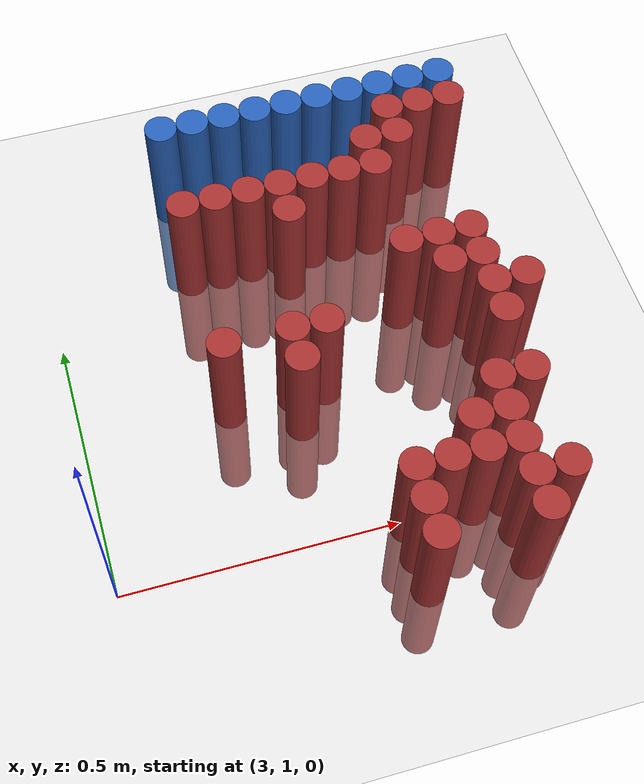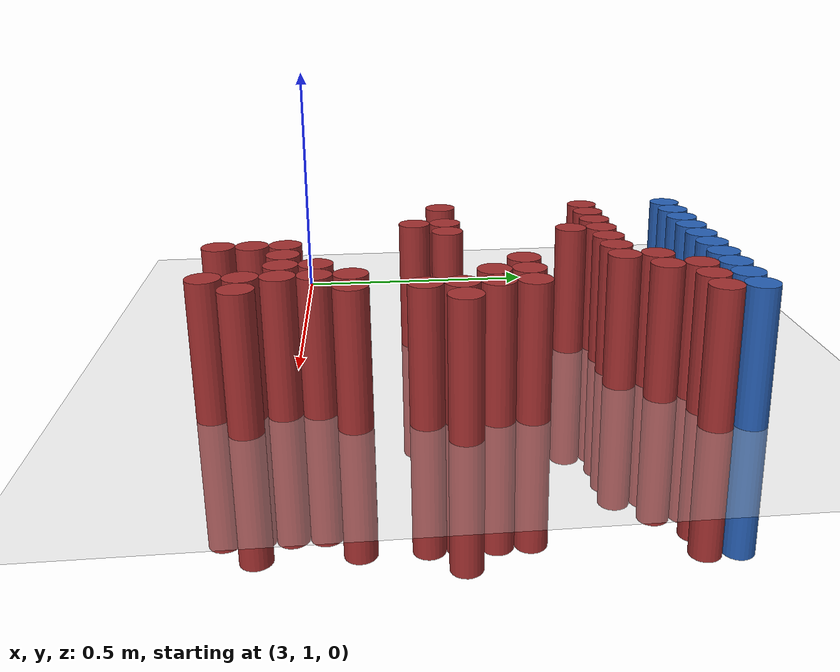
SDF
<sdf version="1.6">
 <world name="default">
  <model name="ground_plane">
   <static>1</static>
   <link name="link">
    <collision name="collision">
     <geometry><plane><normal>0 0 1</normal><size>100 100</size></plane></geometry>
     <surface><friction><ode><mu>100</mu><mu2>50</mu2></ode></friction></surface>
    </collision>
    <visual name="visual">
     <cast_shadows>0</cast_shadows>
     <geometry><plane><normal>0 0 1</normal><size>100 100</size></plane></geometry>
     <material>
      <script><uri>file://media/materials/scripts/gazebo.material</uri><name>Gazebo/Grey</name></script>
     </material>
    </visual>
   </link>
  </model>
  <model name="unit_cylinder_115">
   <static>1</static>
   <pose>3.270000 1.770000 0.000000 0.000000 0.000000 0.000000</pose>
   <link name="link">
    <inertial>
     <mass>1</mass>
     <inertia><ixx>0.145833</ixx><ixy>0</ixy><ixz>0</ixz><iyy>0.145833</iyy><iyz>0</iyz><izz>0.125</izz></inertia>
    </inertial>
    <collision name="collision">
     <geometry><cylinder><radius>0.030000</radius><length>0.5</length></cylinder></geometry>
    </collision>
    <visual name="visual">
     <geometry><cylinder><radius>0.030000</radius><length>0.5</length></cylinder></geometry>
     <material>
      <ambient>0.152000 0.379000 0.720000 1</ambient>
      <diffuse>0.152000 0.379000 0.720000 1</diffuse>
     </material>
     <material>
      <script><name>Gazebo/Grey</name><uri>file://media/materials/scripts/gazebo.material</uri></script>
     </material>
    </visual>
   </link>
  </model>
  <model name="unit_cylinder_116">
   <static>1</static>
   <pose>3.330000 1.770000 0.000000 0.000000 0.000000 0.000000</pose>
   <link name="link">
    <inertial>
     <mass>1</mass>
     <inertia><ixx>0.145833</ixx><ixy>0</ixy><ixz>0</ixz><iyy>0.145833</iyy><iyz>0</iyz><izz>0.125</izz></inertia>
    </inertial>
    <collision name="collision">
     <geometry><cylinder><radius>0.030000</radius><length>0.5</length></cylinder></geometry>
    </collision>
    <visual name="visual">
     <geometry><cylinder><radius>0.030000</radius><length>0.5</length></cylinder></geometry>
     <material>
      <ambient>0.152000 0.379000 0.720000 1</ambient>
      <diffuse>0.152000 0.379000 0.720000 1</diffuse>
     </material>
     <material>
      <script><name>Gazebo/Grey</name><uri>file://media/materials/scripts/gazebo.material</uri></script>
     </material>
    </visual>
   </link>
  </model>
  <model name="unit_cylinder_117">
   <static>1</static>
   <pose>3.390000 1.770000 0.000000 0.000000 0.000000 0.000000</pose>
   <link name="link">
    <inertial>
     <mass>1</mass>
     <inertia><ixx>0.145833</ixx><ixy>0</ixy><ixz>0</ixz><iyy>0.145833</iyy><iyz>0</iyz><izz>0.125</izz></inertia>
    </inertial>
    <collision name="collision">
     <geometry><cylinder><radius>0.030000</radius><length>0.5</length></cylinder></geometry>
    </collision>
    <visual name="visual">
     <geometry><cylinder><radius>0.030000</radius><length>0.5</length></cylinder></geometry>
     <material>
      <ambient>0.152000 0.379000 0.720000 1</ambient>
      <diffuse>0.152000 0.379000 0.720000 1</diffuse>
     </material>
     <material>
      <script><name>Gazebo/Grey</name><uri>file://media/materials/scripts/gazebo.material</uri></script>
     </material>
    </visual>
   </link>
  </model>
  <model name="unit_cylinder_118">
   <static>1</static>
   <pose>3.450000 1.770000 0.000000 0.000000 0.000000 0.000000</pose>
   <link name="link">
    <inertial>
     <mass>1</mass>
     <inertia><ixx>0.145833</ixx><ixy>0</ixy><ixz>0</ixz><iyy>0.145833</iyy><iyz>0</iyz><izz>0.125</izz></inertia>
    </inertial>
    <collision name="collision">
     <geometry><cylinder><radius>0.030000</radius><length>0.5</length></cylinder></geometry>
    </collision>
    <visual name="visual">
     <geometry><cylinder><radius>0.030000</radius><length>0.5</length></cylinder></geometry>
     <material>
      <ambient>0.152000 0.379000 0.720000 1</ambient>
      <diffuse>0.152000 0.379000 0.720000 1</diffuse>
     </material>
     <material>
      <script><name>Gazebo/Grey</name><uri>file://media/materials/scripts/gazebo.material</uri></script>
     </material>
    </visual>
   </link>
  </model>
  <model name="unit_cylinder_119">
   <static>1</static>
   <pose>3.510000 1.770000 0.000000 0.000000 0.000000 0.000000</pose>
   <link name="link">
    <inertial>
     <mass>1</mass>
     <inertia><ixx>0.145833</ixx><ixy>0</ixy><ixz>0</ixz><iyy>0.145833</iyy><iyz>0</iyz><izz>0.125</izz></inertia>
    </inertial>
    <collision name="collision">
     <geometry><cylinder><radius>0.030000</radius><length>0.5</length></cylinder></geometry>
    </collision>
    <visual name="visual">
     <geometry><cylinder><radius>0.030000</radius><length>0.5</length></cylinder></geometry>
     <material>
      <ambient>0.152000 0.379000 0.720000 1</ambient>
      <diffuse>0.152000 0.379000 0.720000 1</diffuse>
     </material>
     <material>
      <script><name>Gazebo/Grey</name><uri>file://media/materials/scripts/gazebo.material</uri></script>
     </material>
    </visual>
   </link>
  </model>
  <model name="unit_cylinder_120">
   <static>1</static>
   <pose>3.570000 1.770000 0.000000 0.000000 0.000000 0.000000</pose>
   <link name="link">
    <inertial>
     <mass>1</mass>
     <inertia><ixx>0.145833</ixx><ixy>0</ixy><ixz>0</ixz><iyy>0.145833</iyy><iyz>0</iyz><izz>0.125</izz></inertia>
    </inertial>
    <collision name="collision">
     <geometry><cylinder><radius>0.030000</radius><length>0.5</length></cylinder></geometry>
    </collision>
    <visual name="visual">
     <geometry><cylinder><radius>0.030000</radius><length>0.5</length></cylinder></geometry>
     <material>
      <ambient>0.152000 0.379000 0.720000 1</ambient>
      <diffuse>0.152000 0.379000 0.720000 1</diffuse>
     </material>
     <material>
      <script><name>Gazebo/Grey</name><uri>file://media/materials/scripts/gazebo.material</uri></script>
     </material>
    </visual>
   </link>
  </model>
  <model name="unit_cylinder_121">
   <static>1</static>
   <pose>3.630000 1.770000 0.000000 0.000000 0.000000 0.000000</pose>
   <link name="link">
    <inertial>
     <mass>1</mass>
     <inertia><ixx>0.145833</ixx><ixy>0</ixy><ixz>0</ixz><iyy>0.145833</iyy><iyz>0</iyz><izz>0.125</izz></inertia>
    </inertial>
    <collision name="collision">
     <geometry><cylinder><radius>0.030000</radius><length>0.5</length></cylinder></geometry>
    </collision>
    <visual name="visual">
     <geometry><cylinder><radius>0.030000</radius><length>0.5</length></cylinder></geometry>
     <material>
      <ambient>0.152000 0.379000 0.720000 1</ambient>
      <diffuse>0.152000 0.379000 0.720000 1</diffuse>
     </material>
     <material>
      <script><name>Gazebo/Grey</name><uri>file://media/materials/scripts/gazebo.material</uri></script>
     </material>
    </visual>
   </link>
  </model>
  <model name="unit_cylinder_122">
   <static>1</static>
   <pose>3.690000 1.770000 0.000000 0.000000 0.000000 0.000000</pose>
   <link name="link">
    <inertial>
     <mass>1</mass>
     <inertia><ixx>0.145833</ixx><ixy>0</ixy><ixz>0</ixz><iyy>0.145833</iyy><iyz>0</iyz><izz>0.125</izz></inertia>
    </inertial>
    <collision name="collision">
     <geometry><cylinder><radius>0.030000</radius><length>0.5</length></cylinder></geometry>
    </collision>
    <visual name="visual">
     <geometry><cylinder><radius>0.030000</radius><length>0.5</length></cylinder></geometry>
     <material>
      <ambient>0.152000 0.379000 0.720000 1</ambient>
      <diffuse>0.152000 0.379000 0.720000 1</diffuse>
     </material>
     <material>
      <script><name>Gazebo/Grey</name><uri>file://media/materials/scripts/gazebo.material</uri></script>
     </material>
    </visual>
   </link>
  </model>
  <model name="unit_cylinder_123">
   <static>1</static>
   <pose>3.750000 1.770000 0.000000 0.000000 0.000000 0.000000</pose>
   <link name="link">
    <inertial>
     <mass>1</mass>
     <inertia><ixx>0.145833</ixx><ixy>0</ixy><ixz>0</ixz><iyy>0.145833</iyy><iyz>0</iyz><izz>0.125</izz></inertia>
    </inertial>
    <collision name="collision">
     <geometry><cylinder><radius>0.030000</radius><length>0.5</length></cylinder></geometry>
    </collision>
    <visual name="visual">
     <geometry><cylinder><radius>0.030000</radius><length>0.5</length></cylinder></geometry>
     <material>
      <ambient>0.152000 0.379000 0.720000 1</ambient>
      <diffuse>0.152000 0.379000 0.720000 1</diffuse>
     </material>
     <material>
      <script><name>Gazebo/Grey</name><uri>file://media/materials/scripts/gazebo.material</uri></script>
     </material>
    </visual>
   </link>
  </model>
  <model name="unit_cylinder_124">
   <static>1</static>
   <pose>3.810000 1.770000 0.000000 0.000000 0.000000 0.000000</pose>
   <link name="link">
    <inertial>
     <mass>1</mass>
     <inertia><ixx>0.145833</ixx><ixy>0</ixy><ixz>0</ixz><iyy>0.145833</iyy><iyz>0</iyz><izz>0.125</izz></inertia>
    </inertial>
    <collision name="collision">
     <geometry><cylinder><radius>0.030000</radius><length>0.5</length></cylinder></geometry>
    </collision>
    <visual name="visual">
     <geometry><cylinder><radius>0.030000</radius><length>0.5</length></cylinder></geometry>
     <material>
      <ambient>0.152000 0.379000 0.720000 1</ambient>
      <diffuse>0.152000 0.379000 0.720000 1</diffuse>
     </material>
     <material>
      <script><name>Gazebo/Grey</name><uri>file://media/materials/scripts/gazebo.material</uri></script>
     </material>
    </visual>
   </link>
  </model>
  <model name="unit_cylinder_134">
   <static>1</static>
   <pose>3.690000 1.710000 0.000000 0.000000 0.000000 0.000000</pose>
   <link name="link">
    <inertial>
     <mass>1</mass>
     <inertia><ixx>0.145833</ixx><ixy>0</ixy><ixz>0</ixz><iyy>0.145833</iyy><iyz>0</iyz><izz>0.125</izz></inertia>
    </inertial>
    <collision name="collision">
     <geometry><cylinder><radius>0.030000</radius><length>0.5</length></cylinder></geometry>
    </collision>
    <visual name="visual">
     <geometry><cylinder><radius>0.030000</radius><length>0.5</length></cylinder></geometry>
     <material>
      <ambient>0.648000 0.192000 0.192000 1</ambient>
      <diffuse>0.648000 0.192000 0.192000 1</diffuse>
     </material>
     <material>
      <script><name>Gazebo/Grey</name><uri>file://media/materials/scripts/gazebo.material</uri></script>
     </material>
    </visual>
   </link>
  </model>
  <model name="unit_cylinder_135">
   <static>1</static>
   <pose>3.750000 1.710000 0.000000 0.000000 0.000000 0.000000</pose>
   <link name="link">
    <inertial>
     <mass>1</mass>
     <inertia><ixx>0.145833</ixx><ixy>0</ixy><ixz>0</ixz><iyy>0.145833</iyy><iyz>0</iyz><izz>0.125</izz></inertia>
    </inertial>
    <collision name="collision">
     <geometry><cylinder><radius>0.030000</radius><length>0.5</length></cylinder></geometry>
    </collision>
    <visual name="visual">
     <geometry><cylinder><radius>0.030000</radius><length>0.5</length></cylinder></geometry>
     <material>
      <ambient>0.648000 0.192000 0.192000 1</ambient>
      <diffuse>0.648000 0.192000 0.192000 1</diffuse>
     </material>
     <material>
      <script><name>Gazebo/Grey</name><uri>file://media/materials/scripts/gazebo.material</uri></script>
     </material>
    </visual>
   </link>
  </model>
  <model name="unit_cylinder_136">
   <static>1</static>
   <pose>3.810000 1.710000 0.000000 0.000000 0.000000 0.000000</pose>
   <link name="link">
    <inertial>
     <mass>1</mass>
     <inertia><ixx>0.145833</ixx><ixy>0</ixy><ixz>0</ixz><iyy>0.145833</iyy><iyz>0</iyz><izz>0.125</izz></inertia>
    </inertial>
    <collision name="collision">
     <geometry><cylinder><radius>0.030000</radius><length>0.5</length></cylinder></geometry>
    </collision>
    <visual name="visual">
     <geometry><cylinder><radius>0.030000</radius><length>0.5</length></cylinder></geometry>
     <material>
      <ambient>0.648000 0.192000 0.192000 1</ambient>
      <diffuse>0.648000 0.192000 0.192000 1</diffuse>
     </material>
     <material>
      <script><name>Gazebo/Grey</name><uri>file://media/materials/scripts/gazebo.material</uri></script>
     </material>
    </visual>
   </link>
  </model>
  <model name="unit_cylinder_143">
   <static>1</static>
   <pose>3.630000 1.650000 0.000000 0.000000 0.000000 0.000000</pose>
   <link name="link">
    <inertial>
     <mass>1</mass>
     <inertia><ixx>0.145833</ixx><ixy>0</ixy><ixz>0</ixz><iyy>0.145833</iyy><iyz>0</iyz><izz>0.125</izz></inertia>
    </inertial>
    <collision name="collision">
     <geometry><cylinder><radius>0.030000</radius><length>0.5</length></cylinder></geometry>
    </collision>
    <visual name="visual">
     <geometry><cylinder><radius>0.030000</radius><length>0.5</length></cylinder></geometry>
     <material>
      <ambient>0.648000 0.192000 0.192000 1</ambient>
      <diffuse>0.648000 0.192000 0.192000 1</diffuse>
     </material>
     <material>
      <script><name>Gazebo/Grey</name><uri>file://media/materials/scripts/gazebo.material</uri></script>
     </material>
    </visual>
   </link>
  </model>
  <model name="unit_cylinder_144">
   <static>1</static>
   <pose>3.690000 1.650000 0.000000 0.000000 0.000000 0.000000</pose>
   <link name="link">
    <inertial>
     <mass>1</mass>
     <inertia><ixx>0.145833</ixx><ixy>0</ixy><ixz>0</ixz><iyy>0.145833</iyy><iyz>0</iyz><izz>0.125</izz></inertia>
    </inertial>
    <collision name="collision">
     <geometry><cylinder><radius>0.030000</radius><length>0.5</length></cylinder></geometry>
    </collision>
    <visual name="visual">
     <geometry><cylinder><radius>0.030000</radius><length>0.5</length></cylinder></geometry>
     <material>
      <ambient>0.648000 0.192000 0.192000 1</ambient>
      <diffuse>0.648000 0.192000 0.192000 1</diffuse>
     </material>
     <material>
      <script><name>Gazebo/Grey</name><uri>file://media/materials/scripts/gazebo.material</uri></script>
     </material>
    </visual>
   </link>
  </model>
  <model name="unit_cylinder_152">
   <static>1</static>
   <pose>3.270000 1.590000 0.000000 0.000000 0.000000 0.000000</pose>
   <link name="link">
    <inertial>
     <mass>1</mass>
     <inertia><ixx>0.145833</ixx><ixy>0</ixy><ixz>0</ixz><iyy>0.145833</iyy><iyz>0</iyz><izz>0.125</izz></inertia>
    </inertial>
    <collision name="collision">
     <geometry><cylinder><radius>0.030000</radius><length>0.5</length></cylinder></geometry>
    </collision>
    <visual name="visual">
     <geometry><cylinder><radius>0.030000</radius><length>0.5</length></cylinder></geometry>
     <material>
      <ambient>0.648000 0.192000 0.192000 1</ambient>
      <diffuse>0.648000 0.192000 0.192000 1</diffuse>
     </material>
     <material>
      <script><name>Gazebo/Grey</name><uri>file://media/materials/scripts/gazebo.material</uri></script>
     </material>
    </visual>
   </link>
  </model>
  <model name="unit_cylinder_153">
   <static>1</static>
   <pose>3.330000 1.590000 0.000000 0.000000 0.000000 0.000000</pose>
   <link name="link">
    <inertial>
     <mass>1</mass>
     <inertia><ixx>0.145833</ixx><ixy>0</ixy><ixz>0</ixz><iyy>0.145833</iyy><iyz>0</iyz><izz>0.125</izz></inertia>
    </inertial>
    <collision name="collision">
     <geometry><cylinder><radius>0.030000</radius><length>0.5</length></cylinder></geometry>
    </collision>
    <visual name="visual">
     <geometry><cylinder><radius>0.030000</radius><length>0.5</length></cylinder></geometry>
     <material>
      <ambient>0.648000 0.192000 0.192000 1</ambient>
      <diffuse>0.648000 0.192000 0.192000 1</diffuse>
     </material>
     <material>
      <script><name>Gazebo/Grey</name><uri>file://media/materials/scripts/gazebo.material</uri></script>
     </material>
    </visual>
   </link>
  </model>
  <model name="unit_cylinder_154">
   <static>1</static>
   <pose>3.390000 1.590000 0.000000 0.000000 0.000000 0.000000</pose>
   <link name="link">
    <inertial>
     <mass>1</mass>
     <inertia><ixx>0.145833</ixx><ixy>0</ixy><ixz>0</ixz><iyy>0.145833</iyy><iyz>0</iyz><izz>0.125</izz></inertia>
    </inertial>
    <collision name="collision">
     <geometry><cylinder><radius>0.030000</radius><length>0.5</length></cylinder></geometry>
    </collision>
    <visual name="visual">
     <geometry><cylinder><radius>0.030000</radius><length>0.5</length></cylinder></geometry>
     <material>
      <ambient>0.648000 0.192000 0.192000 1</ambient>
      <diffuse>0.648000 0.192000 0.192000 1</diffuse>
     </material>
     <material>
      <script><name>Gazebo/Grey</name><uri>file://media/materials/scripts/gazebo.material</uri></script>
     </material>
    </visual>
   </link>
  </model>
  <model name="unit_cylinder_155">
   <static>1</static>
   <pose>3.450000 1.590000 0.000000 0.000000 0.000000 0.000000</pose>
   <link name="link">
    <inertial>
     <mass>1</mass>
     <inertia><ixx>0.145833</ixx><ixy>0</ixy><ixz>0</ixz><iyy>0.145833</iyy><iyz>0</iyz><izz>0.125</izz></inertia>
    </inertial>
    <collision name="collision">
     <geometry><cylinder><radius>0.030000</radius><length>0.5</length></cylinder></geometry>
    </collision>
    <visual name="visual">
     <geometry><cylinder><radius>0.030000</radius><length>0.5</length></cylinder></geometry>
     <material>
      <ambient>0.648000 0.192000 0.192000 1</ambient>
      <diffuse>0.648000 0.192000 0.192000 1</diffuse>
     </material>
     <material>
      <script><name>Gazebo/Grey</name><uri>file://media/materials/scripts/gazebo.material</uri></script>
     </material>
    </visual>
   </link>
  </model>
  <model name="unit_cylinder_156">
   <static>1</static>
   <pose>3.510000 1.590000 0.000000 0.000000 0.000000 0.000000</pose>
   <link name="link">
    <inertial>
     <mass>1</mass>
     <inertia><ixx>0.145833</ixx><ixy>0</ixy><ixz>0</ixz><iyy>0.145833</iyy><iyz>0</iyz><izz>0.125</izz></inertia>
    </inertial>
    <collision name="collision">
     <geometry><cylinder><radius>0.030000</radius><length>0.5</length></cylinder></geometry>
    </collision>
    <visual name="visual">
     <geometry><cylinder><radius>0.030000</radius><length>0.5</length></cylinder></geometry>
     <material>
      <ambient>0.648000 0.192000 0.192000 1</ambient>
      <diffuse>0.648000 0.192000 0.192000 1</diffuse>
     </material>
     <material>
      <script><name>Gazebo/Grey</name><uri>file://media/materials/scripts/gazebo.material</uri></script>
     </material>
    </visual>
   </link>
  </model>
  <model name="unit_cylinder_157">
   <static>1</static>
   <pose>3.570000 1.590000 0.000000 0.000000 0.000000 0.000000</pose>
   <link name="link">
    <inertial>
     <mass>1</mass>
     <inertia><ixx>0.145833</ixx><ixy>0</ixy><ixz>0</ixz><iyy>0.145833</iyy><iyz>0</iyz><izz>0.125</izz></inertia>
    </inertial>
    <collision name="collision">
     <geometry><cylinder><radius>0.030000</radius><length>0.5</length></cylinder></geometry>
    </collision>
    <visual name="visual">
     <geometry><cylinder><radius>0.030000</radius><length>0.5</length></cylinder></geometry>
     <material>
      <ambient>0.648000 0.192000 0.192000 1</ambient>
      <diffuse>0.648000 0.192000 0.192000 1</diffuse>
     </material>
     <material>
      <script><name>Gazebo/Grey</name><uri>file://media/materials/scripts/gazebo.material</uri></script>
     </material>
    </visual>
   </link>
  </model>
  <model name="unit_cylinder_158">
   <static>1</static>
   <pose>3.630000 1.590000 0.000000 0.000000 0.000000 0.000000</pose>
   <link name="link">
    <inertial>
     <mass>1</mass>
     <inertia><ixx>0.145833</ixx><ixy>0</ixy><ixz>0</ixz><iyy>0.145833</iyy><iyz>0</iyz><izz>0.125</izz></inertia>
    </inertial>
    <collision name="collision">
     <geometry><cylinder><radius>0.030000</radius><length>0.5</length></cylinder></geometry>
    </collision>
    <visual name="visual">
     <geometry><cylinder><radius>0.030000</radius><length>0.5</length></cylinder></geometry>
     <material>
      <ambient>0.648000 0.192000 0.192000 1</ambient>
      <diffuse>0.648000 0.192000 0.192000 1</diffuse>
     </material>
     <material>
      <script><name>Gazebo/Grey</name><uri>file://media/materials/scripts/gazebo.material</uri></script>
     </material>
    </visual>
   </link>
  </model>
  <model name="unit_cylinder_166">
   <static>1</static>
   <pose>3.450000 1.530000 0.000000 0.000000 0.000000 0.000000</pose>
   <link name="link">
    <inertial>
     <mass>1</mass>
     <inertia><ixx>0.145833</ixx><ixy>0</ixy><ixz>0</ixz><iyy>0.145833</iyy><iyz>0</iyz><izz>0.125</izz></inertia>
    </inertial>
    <collision name="collision">
     <geometry><cylinder><radius>0.030000</radius><length>0.5</length></cylinder></geometry>
    </collision>
    <visual name="visual">
     <geometry><cylinder><radius>0.030000</radius><length>0.5</length></cylinder></geometry>
     <material>
      <ambient>0.648000 0.192000 0.192000 1</ambient>
      <diffuse>0.648000 0.192000 0.192000 1</diffuse>
     </material>
     <material>
      <script><name>Gazebo/Grey</name><uri>file://media/materials/scripts/gazebo.material</uri></script>
     </material>
    </visual>
   </link>
  </model>
  <model name="unit_cylinder_178">
   <static>1</static>
   <pose>3.630000 1.410000 0.000000 0.000000 0.000000 0.000000</pose>
   <link name="link">
    <inertial>
     <mass>1</mass>
     <inertia><ixx>0.145833</ixx><ixy>0</ixy><ixz>0</ixz><iyy>0.145833</iyy><iyz>0</iyz><izz>0.125</izz></inertia>
    </inertial>
    <collision name="collision">
     <geometry><cylinder><radius>0.030000</radius><length>0.5</length></cylinder></geometry>
    </collision>
    <visual name="visual">
     <geometry><cylinder><radius>0.030000</radius><length>0.5</length></cylinder></geometry>
     <material>
      <ambient>0.648000 0.192000 0.192000 1</ambient>
      <diffuse>0.648000 0.192000 0.192000 1</diffuse>
     </material>
     <material>
      <script><name>Gazebo/Grey</name><uri>file://media/materials/scripts/gazebo.material</uri></script>
     </material>
    </visual>
   </link>
  </model>
  <model name="unit_cylinder_179">
   <static>1</static>
   <pose>3.690000 1.410000 0.000000 0.000000 0.000000 0.000000</pose>
   <link name="link">
    <inertial>
     <mass>1</mass>
     <inertia><ixx>0.145833</ixx><ixy>0</ixy><ixz>0</ixz><iyy>0.145833</iyy><iyz>0</iyz><izz>0.125</izz></inertia>
    </inertial>
    <collision name="collision">
     <geometry><cylinder><radius>0.030000</radius><length>0.5</length></cylinder></geometry>
    </collision>
    <visual name="visual">
     <geometry><cylinder><radius>0.030000</radius><length>0.5</length></cylinder></geometry>
     <material>
      <ambient>0.648000 0.192000 0.192000 1</ambient>
      <diffuse>0.648000 0.192000 0.192000 1</diffuse>
     </material>
     <material>
      <script><name>Gazebo/Grey</name><uri>file://media/materials/scripts/gazebo.material</uri></script>
     </material>
    </visual>
   </link>
  </model>
  <model name="unit_cylinder_180">
   <static>1</static>
   <pose>3.750000 1.410000 0.000000 0.000000 0.000000 0.000000</pose>
   <link name="link">
    <inertial>
     <mass>1</mass>
     <inertia><ixx>0.145833</ixx><ixy>0</ixy><ixz>0</ixz><iyy>0.145833</iyy><iyz>0</iyz><izz>0.125</izz></inertia>
    </inertial>
    <collision name="collision">
     <geometry><cylinder><radius>0.030000</radius><length>0.5</length></cylinder></geometry>
    </collision>
    <visual name="visual">
     <geometry><cylinder><radius>0.030000</radius><length>0.5</length></cylinder></geometry>
     <material>
      <ambient>0.648000 0.192000 0.192000 1</ambient>
      <diffuse>0.648000 0.192000 0.192000 1</diffuse>
     </material>
     <material>
      <script><name>Gazebo/Grey</name><uri>file://media/materials/scripts/gazebo.material</uri></script>
     </material>
    </visual>
   </link>
  </model>
  <model name="unit_cylinder_182">
   <static>1</static>
   <pose>3.690000 1.350000 0.000000 0.000000 0.000000 0.000000</pose>
   <link name="link">
    <inertial>
     <mass>1</mass>
     <inertia><ixx>0.145833</ixx><ixy>0</ixy><ixz>0</ixz><iyy>0.145833</iyy><iyz>0</iyz><izz>0.125</izz></inertia>
    </inertial>
    <collision name="collision">
     <geometry><cylinder><radius>0.030000</radius><length>0.5</length></cylinder></geometry>
    </collision>
    <visual name="visual">
     <geometry><cylinder><radius>0.030000</radius><length>0.5</length></cylinder></geometry>
     <material>
      <ambient>0.648000 0.192000 0.192000 1</ambient>
      <diffuse>0.648000 0.192000 0.192000 1</diffuse>
     </material>
     <material>
      <script><name>Gazebo/Grey</name><uri>file://media/materials/scripts/gazebo.material</uri></script>
     </material>
    </visual>
   </link>
  </model>
  <model name="unit_cylinder_183">
   <static>1</static>
   <pose>3.750000 1.350000 0.000000 0.000000 0.000000 0.000000</pose>
   <link name="link">
    <inertial>
     <mass>1</mass>
     <inertia><ixx>0.145833</ixx><ixy>0</ixy><ixz>0</ixz><iyy>0.145833</iyy><iyz>0</iyz><izz>0.125</izz></inertia>
    </inertial>
    <collision name="collision">
     <geometry><cylinder><radius>0.030000</radius><length>0.5</length></cylinder></geometry>
    </collision>
    <visual name="visual">
     <geometry><cylinder><radius>0.030000</radius><length>0.5</length></cylinder></geometry>
     <material>
      <ambient>0.648000 0.192000 0.192000 1</ambient>
      <diffuse>0.648000 0.192000 0.192000 1</diffuse>
     </material>
     <material>
      <script><name>Gazebo/Grey</name><uri>file://media/materials/scripts/gazebo.material</uri></script>
     </material>
    </visual>
   </link>
  </model>
  <model name="unit_cylinder_184">
   <static>1</static>
   <pose>3.270000 1.290000 0.000000 0.000000 0.000000 0.000000</pose>
   <link name="link">
    <inertial>
     <mass>1</mass>
     <inertia><ixx>0.145833</ixx><ixy>0</ixy><ixz>0</ixz><iyy>0.145833</iyy><iyz>0</iyz><izz>0.125</izz></inertia>
    </inertial>
    <collision name="collision">
     <geometry><cylinder><radius>0.030000</radius><length>0.5</length></cylinder></geometry>
    </collision>
    <visual name="visual">
     <geometry><cylinder><radius>0.030000</radius><length>0.5</length></cylinder></geometry>
     <material>
      <ambient>0.648000 0.192000 0.192000 1</ambient>
      <diffuse>0.648000 0.192000 0.192000 1</diffuse>
     </material>
     <material>
      <script><name>Gazebo/Grey</name><uri>file://media/materials/scripts/gazebo.material</uri></script>
     </material>
    </visual>
   </link>
  </model>
  <model name="unit_cylinder_185">
   <static>1</static>
   <pose>3.390000 1.290000 0.000000 0.000000 0.000000 0.000000</pose>
   <link name="link">
    <inertial>
     <mass>1</mass>
     <inertia><ixx>0.145833</ixx><ixy>0</ixy><ixz>0</ixz><iyy>0.145833</iyy><iyz>0</iyz><izz>0.125</izz></inertia>
    </inertial>
    <collision name="collision">
     <geometry><cylinder><radius>0.030000</radius><length>0.5</length></cylinder></geometry>
    </collision>
    <visual name="visual">
     <geometry><cylinder><radius>0.030000</radius><length>0.5</length></cylinder></geometry>
     <material>
      <ambient>0.648000 0.192000 0.192000 1</ambient>
      <diffuse>0.648000 0.192000 0.192000 1</diffuse>
     </material>
     <material>
      <script><name>Gazebo/Grey</name><uri>file://media/materials/scripts/gazebo.material</uri></script>
     </material>
    </visual>
   </link>
  </model>
  <model name="unit_cylinder_186">
   <static>1</static>
   <pose>3.450000 1.290000 0.000000 0.000000 0.000000 0.000000</pose>
   <link name="link">
    <inertial>
     <mass>1</mass>
     <inertia><ixx>0.145833</ixx><ixy>0</ixy><ixz>0</ixz><iyy>0.145833</iyy><iyz>0</iyz><izz>0.125</izz></inertia>
    </inertial>
    <collision name="collision">
     <geometry><cylinder><radius>0.030000</radius><length>0.5</length></cylinder></geometry>
    </collision>
    <visual name="visual">
     <geometry><cylinder><radius>0.030000</radius><length>0.5</length></cylinder></geometry>
     <material>
      <ambient>0.648000 0.192000 0.192000 1</ambient>
      <diffuse>0.648000 0.192000 0.192000 1</diffuse>
     </material>
     <material>
      <script><name>Gazebo/Grey</name><uri>file://media/materials/scripts/gazebo.material</uri></script>
     </material>
    </visual>
   </link>
  </model>
  <model name="unit_cylinder_187">
   <static>1</static>
   <pose>3.750000 1.290000 0.000000 0.000000 0.000000 0.000000</pose>
   <link name="link">
    <inertial>
     <mass>1</mass>
     <inertia><ixx>0.145833</ixx><ixy>0</ixy><ixz>0</ixz><iyy>0.145833</iyy><iyz>0</iyz><izz>0.125</izz></inertia>
    </inertial>
    <collision name="collision">
     <geometry><cylinder><radius>0.030000</radius><length>0.5</length></cylinder></geometry>
    </collision>
    <visual name="visual">
     <geometry><cylinder><radius>0.030000</radius><length>0.5</length></cylinder></geometry>
     <material>
      <ambient>0.648000 0.192000 0.192000 1</ambient>
      <diffuse>0.648000 0.192000 0.192000 1</diffuse>
     </material>
     <material>
      <script><name>Gazebo/Grey</name><uri>file://media/materials/scripts/gazebo.material</uri></script>
     </material>
    </visual>
   </link>
  </model>
  <model name="unit_cylinder_188">
   <static>1</static>
   <pose>3.810000 1.290000 0.000000 0.000000 0.000000 0.000000</pose>
   <link name="link">
    <inertial>
     <mass>1</mass>
     <inertia><ixx>0.145833</ixx><ixy>0</ixy><ixz>0</ixz><iyy>0.145833</iyy><iyz>0</iyz><izz>0.125</izz></inertia>
    </inertial>
    <collision name="collision">
     <geometry><cylinder><radius>0.030000</radius><length>0.5</length></cylinder></geometry>
    </collision>
    <visual name="visual">
     <geometry><cylinder><radius>0.030000</radius><length>0.5</length></cylinder></geometry>
     <material>
      <ambient>0.648000 0.192000 0.192000 1</ambient>
      <diffuse>0.648000 0.192000 0.192000 1</diffuse>
     </material>
     <material>
      <script><name>Gazebo/Grey</name><uri>file://media/materials/scripts/gazebo.material</uri></script>
     </material>
    </visual>
   </link>
  </model>
  <model name="unit_cylinder_189">
   <static>1</static>
   <pose>3.390000 1.230000 0.000000 0.000000 0.000000 0.000000</pose>
   <link name="link">
    <inertial>
     <mass>1</mass>
     <inertia><ixx>0.145833</ixx><ixy>0</ixy><ixz>0</ixz><iyy>0.145833</iyy><iyz>0</iyz><izz>0.125</izz></inertia>
    </inertial>
    <collision name="collision">
     <geometry><cylinder><radius>0.030000</radius><length>0.5</length></cylinder></geometry>
    </collision>
    <visual name="visual">
     <geometry><cylinder><radius>0.030000</radius><length>0.5</length></cylinder></geometry>
     <material>
      <ambient>0.648000 0.192000 0.192000 1</ambient>
      <diffuse>0.648000 0.192000 0.192000 1</diffuse>
     </material>
     <material>
      <script><name>Gazebo/Grey</name><uri>file://media/materials/scripts/gazebo.material</uri></script>
     </material>
    </visual>
   </link>
  </model>
  <model name="unit_cylinder_190">
   <static>1</static>
   <pose>3.750000 1.230000 0.000000 0.000000 0.000000 0.000000</pose>
   <link name="link">
    <inertial>
     <mass>1</mass>
     <inertia><ixx>0.145833</ixx><ixy>0</ixy><ixz>0</ixz><iyy>0.145833</iyy><iyz>0</iyz><izz>0.125</izz></inertia>
    </inertial>
    <collision name="collision">
     <geometry><cylinder><radius>0.030000</radius><length>0.5</length></cylinder></geometry>
    </collision>
    <visual name="visual">
     <geometry><cylinder><radius>0.030000</radius><length>0.5</length></cylinder></geometry>
     <material>
      <ambient>0.648000 0.192000 0.192000 1</ambient>
      <diffuse>0.648000 0.192000 0.192000 1</diffuse>
     </material>
     <material>
      <script><name>Gazebo/Grey</name><uri>file://media/materials/scripts/gazebo.material</uri></script>
     </material>
    </visual>
   </link>
  </model>
  <model name="unit_cylinder_191">
   <static>1</static>
   <pose>3.690000 1.110000 0.000000 0.000000 0.000000 0.000000</pose>
   <link name="link">
    <inertial>
     <mass>1</mass>
     <inertia><ixx>0.145833</ixx><ixy>0</ixy><ixz>0</ixz><iyy>0.145833</iyy><iyz>0</iyz><izz>0.125</izz></inertia>
    </inertial>
    <collision name="collision">
     <geometry><cylinder><radius>0.030000</radius><length>0.5</length></cylinder></geometry>
    </collision>
    <visual name="visual">
     <geometry><cylinder><radius>0.030000</radius><length>0.5</length></cylinder></geometry>
     <material>
      <ambient>0.648000 0.192000 0.192000 1</ambient>
      <diffuse>0.648000 0.192000 0.192000 1</diffuse>
     </material>
     <material>
      <script><name>Gazebo/Grey</name><uri>file://media/materials/scripts/gazebo.material</uri></script>
     </material>
    </visual>
   </link>
  </model>
  <model name="unit_cylinder_192">
   <static>1</static>
   <pose>3.750000 1.110000 0.000000 0.000000 0.000000 0.000000</pose>
   <link name="link">
    <inertial>
     <mass>1</mass>
     <inertia><ixx>0.145833</ixx><ixy>0</ixy><ixz>0</ixz><iyy>0.145833</iyy><iyz>0</iyz><izz>0.125</izz></inertia>
    </inertial>
    <collision name="collision">
     <geometry><cylinder><radius>0.030000</radius><length>0.5</length></cylinder></geometry>
    </collision>
    <visual name="visual">
     <geometry><cylinder><radius>0.030000</radius><length>0.5</length></cylinder></geometry>
     <material>
      <ambient>0.648000 0.192000 0.192000 1</ambient>
      <diffuse>0.648000 0.192000 0.192000 1</diffuse>
     </material>
     <material>
      <script><name>Gazebo/Grey</name><uri>file://media/materials/scripts/gazebo.material</uri></script>
     </material>
    </visual>
   </link>
  </model>
  <model name="unit_cylinder_194">
   <static>1</static>
   <pose>3.630000 1.050000 0.000000 0.000000 0.000000 0.000000</pose>
   <link name="link">
    <inertial>
     <mass>1</mass>
     <inertia><ixx>0.145833</ixx><ixy>0</ixy><ixz>0</ixz><iyy>0.145833</iyy><iyz>0</iyz><izz>0.125</izz></inertia>
    </inertial>
    <collision name="collision">
     <geometry><cylinder><radius>0.030000</radius><length>0.5</length></cylinder></geometry>
    </collision>
    <visual name="visual">
     <geometry><cylinder><radius>0.030000</radius><length>0.5</length></cylinder></geometry>
     <material>
      <ambient>0.648000 0.192000 0.192000 1</ambient>
      <diffuse>0.648000 0.192000 0.192000 1</diffuse>
     </material>
     <material>
      <script><name>Gazebo/Grey</name><uri>file://media/materials/scripts/gazebo.material</uri></script>
     </material>
    </visual>
   </link>
  </model>
  <model name="unit_cylinder_195">
   <static>1</static>
   <pose>3.690000 1.050000 0.000000 0.000000 0.000000 0.000000</pose>
   <link name="link">
    <inertial>
     <mass>1</mass>
     <inertia><ixx>0.145833</ixx><ixy>0</ixy><ixz>0</ixz><iyy>0.145833</iyy><iyz>0</iyz><izz>0.125</izz></inertia>
    </inertial>
    <collision name="collision">
     <geometry><cylinder><radius>0.030000</radius><length>0.5</length></cylinder></geometry>
    </collision>
    <visual name="visual">
     <geometry><cylinder><radius>0.030000</radius><length>0.5</length></cylinder></geometry>
     <material>
      <ambient>0.648000 0.192000 0.192000 1</ambient>
      <diffuse>0.648000 0.192000 0.192000 1</diffuse>
     </material>
     <material>
      <script><name>Gazebo/Grey</name><uri>file://media/materials/scripts/gazebo.material</uri></script>
     </material>
    </visual>
   </link>
  </model>
  <model name="unit_cylinder_198">
   <static>1</static>
   <pose>3.510000 0.990000 0.000000 0.000000 0.000000 0.000000</pose>
   <link name="link">
    <inertial>
     <mass>1</mass>
     <inertia><ixx>0.145833</ixx><ixy>0</ixy><ixz>0</ixz><iyy>0.145833</iyy><iyz>0</iyz><izz>0.125</izz></inertia>
    </inertial>
    <collision name="collision">
     <geometry><cylinder><radius>0.030000</radius><length>0.5</length></cylinder></geometry>
    </collision>
    <visual name="visual">
     <geometry><cylinder><radius>0.030000</radius><length>0.5</length></cylinder></geometry>
     <material>
      <ambient>0.648000 0.192000 0.192000 1</ambient>
      <diffuse>0.648000 0.192000 0.192000 1</diffuse>
     </material>
     <material>
      <script><name>Gazebo/Grey</name><uri>file://media/materials/scripts/gazebo.material</uri></script>
     </material>
    </visual>
   </link>
  </model>
  <model name="unit_cylinder_199">
   <static>1</static>
   <pose>3.570000 0.990000 0.000000 0.000000 0.000000 0.000000</pose>
   <link name="link">
    <inertial>
     <mass>1</mass>
     <inertia><ixx>0.145833</ixx><ixy>0</ixy><ixz>0</ixz><iyy>0.145833</iyy><iyz>0</iyz><izz>0.125</izz></inertia>
    </inertial>
    <collision name="collision">
     <geometry><cylinder><radius>0.030000</radius><length>0.5</length></cylinder></geometry>
    </collision>
    <visual name="visual">
     <geometry><cylinder><radius>0.030000</radius><length>0.5</length></cylinder></geometry>
     <material>
      <ambient>0.648000 0.192000 0.192000 1</ambient>
      <diffuse>0.648000 0.192000 0.192000 1</diffuse>
     </material>
     <material>
      <script><name>Gazebo/Grey</name><uri>file://media/materials/scripts/gazebo.material</uri></script>
     </material>
    </visual>
   </link>
  </model>
  <model name="unit_cylinder_200">
   <static>1</static>
   <pose>3.630000 0.990000 0.000000 0.000000 0.000000 0.000000</pose>
   <link name="link">
    <inertial>
     <mass>1</mass>
     <inertia><ixx>0.145833</ixx><ixy>0</ixy><ixz>0</ixz><iyy>0.145833</iyy><iyz>0</iyz><izz>0.125</izz></inertia>
    </inertial>
    <collision name="collision">
     <geometry><cylinder><radius>0.030000</radius><length>0.5</length></cylinder></geometry>
    </collision>
    <visual name="visual">
     <geometry><cylinder><radius>0.030000</radius><length>0.5</length></cylinder></geometry>
     <material>
      <ambient>0.648000 0.192000 0.192000 1</ambient>
      <diffuse>0.648000 0.192000 0.192000 1</diffuse>
     </material>
     <material>
      <script><name>Gazebo/Grey</name><uri>file://media/materials/scripts/gazebo.material</uri></script>
     </material>
    </visual>
   </link>
  </model>
  <model name="unit_cylinder_201">
   <static>1</static>
   <pose>3.690000 0.990000 0.000000 0.000000 0.000000 0.000000</pose>
   <link name="link">
    <inertial>
     <mass>1</mass>
     <inertia><ixx>0.145833</ixx><ixy>0</ixy><ixz>0</ixz><iyy>0.145833</iyy><iyz>0</iyz><izz>0.125</izz></inertia>
    </inertial>
    <collision name="collision">
     <geometry><cylinder><radius>0.030000</radius><length>0.5</length></cylinder></geometry>
    </collision>
    <visual name="visual">
     <geometry><cylinder><radius>0.030000</radius><length>0.5</length></cylinder></geometry>
     <material>
      <ambient>0.648000 0.192000 0.192000 1</ambient>
      <diffuse>0.648000 0.192000 0.192000 1</diffuse>
     </material>
     <material>
      <script><name>Gazebo/Grey</name><uri>file://media/materials/scripts/gazebo.material</uri></script>
     </material>
    </visual>
   </link>
  </model>
  <model name="unit_cylinder_205">
   <static>1</static>
   <pose>3.510000 0.930000 0.000000 0.000000 0.000000 0.000000</pose>
   <link name="link">
    <inertial>
     <mass>1</mass>
     <inertia><ixx>0.145833</ixx><ixy>0</ixy><ixz>0</ixz><iyy>0.145833</iyy><iyz>0</iyz><izz>0.125</izz></inertia>
    </inertial>
    <collision name="collision">
     <geometry><cylinder><radius>0.030000</radius><length>0.5</length></cylinder></geometry>
    </collision>
    <visual name="visual">
     <geometry><cylinder><radius>0.030000</radius><length>0.5</length></cylinder></geometry>
     <material>
      <ambient>0.648000 0.192000 0.192000 1</ambient>
      <diffuse>0.648000 0.192000 0.192000 1</diffuse>
     </material>
     <material>
      <script><name>Gazebo/Grey</name><uri>file://media/materials/scripts/gazebo.material</uri></script>
     </material>
    </visual>
   </link>
  </model>
  <model name="unit_cylinder_206">
   <static>1</static>
   <pose>3.690000 0.930000 0.000000 0.000000 0.000000 0.000000</pose>
   <link name="link">
    <inertial>
     <mass>1</mass>
     <inertia><ixx>0.145833</ixx><ixy>0</ixy><ixz>0</ixz><iyy>0.145833</iyy><iyz>0</iyz><izz>0.125</izz></inertia>
    </inertial>
    <collision name="collision">
     <geometry><cylinder><radius>0.030000</radius><length>0.5</length></cylinder></geometry>
    </collision>
    <visual name="visual">
     <geometry><cylinder><radius>0.030000</radius><length>0.5</length></cylinder></geometry>
     <material>
      <ambient>0.648000 0.192000 0.192000 1</ambient>
      <diffuse>0.648000 0.192000 0.192000 1</diffuse>
     </material>
     <material>
      <script><name>Gazebo/Grey</name><uri>file://media/materials/scripts/gazebo.material</uri></script>
     </material>
    </visual>
   </link>
  </model>
  <model name="unit_cylinder_207">
   <static>1</static>
   <pose>3.750000 0.930000 0.000000 0.000000 0.000000 0.000000</pose>
   <link name="link">
    <inertial>
     <mass>1</mass>
     <inertia><ixx>0.145833</ixx><ixy>0</ixy><ixz>0</ixz><iyy>0.145833</iyy><iyz>0</iyz><izz>0.125</izz></inertia>
    </inertial>
    <collision name="collision">
     <geometry><cylinder><radius>0.030000</radius><length>0.5</length></cylinder></geometry>
    </collision>
    <visual name="visual">
     <geometry><cylinder><radius>0.030000</radius><length>0.5</length></cylinder></geometry>
     <material>
      <ambient>0.648000 0.192000 0.192000 1</ambient>
      <diffuse>0.648000 0.192000 0.192000 1</diffuse>
     </material>
     <material>
      <script><name>Gazebo/Grey</name><uri>file://media/materials/scripts/gazebo.material</uri></script>
     </material>
    </visual>
   </link>
  </model>
  <model name="unit_cylinder_213">
   <static>1</static>
   <pose>3.510000 0.870000 0.000000 0.000000 0.000000 0.000000</pose>
   <link name="link">
    <inertial>
     <mass>1</mass>
     <inertia><ixx>0.145833</ixx><ixy>0</ixy><ixz>0</ixz><iyy>0.145833</iyy><iyz>0</iyz><izz>0.125</izz></inertia>
    </inertial>
    <collision name="collision">
     <geometry><cylinder><radius>0.030000</radius><length>0.5</length></cylinder></geometry>
    </collision>
    <visual name="visual">
     <geometry><cylinder><radius>0.030000</radius><length>0.5</length></cylinder></geometry>
     <material>
      <ambient>0.648000 0.192000 0.192000 1</ambient>
      <diffuse>0.648000 0.192000 0.192000 1</diffuse>
     </material>
     <material>
      <script><name>Gazebo/Grey</name><uri>file://media/materials/scripts/gazebo.material</uri></script>
     </material>
    </visual>
   </link>
  </model>
  <model name="unit_cylinder_214">
   <static>1</static>
   <pose>3.690000 0.870000 0.000000 0.000000 0.000000 0.000000</pose>
   <link name="link">
    <inertial>
     <mass>1</mass>
     <inertia><ixx>0.145833</ixx><ixy>0</ixy><ixz>0</ixz><iyy>0.145833</iyy><iyz>0</iyz><izz>0.125</izz></inertia>
    </inertial>
    <collision name="collision">
     <geometry><cylinder><radius>0.030000</radius><length>0.5</length></cylinder></geometry>
    </collision>
    <visual name="visual">
     <geometry><cylinder><radius>0.030000</radius><length>0.5</length></cylinder></geometry>
     <material>
      <ambient>0.648000 0.192000 0.192000 1</ambient>
      <diffuse>0.648000 0.192000 0.192000 1</diffuse>
     </material>
     <material>
      <script><name>Gazebo/Grey</name><uri>file://media/materials/scripts/gazebo.material</uri></script>
     </material>
    </visual>
   </link>
  </model>
 </world>
</sdf>
